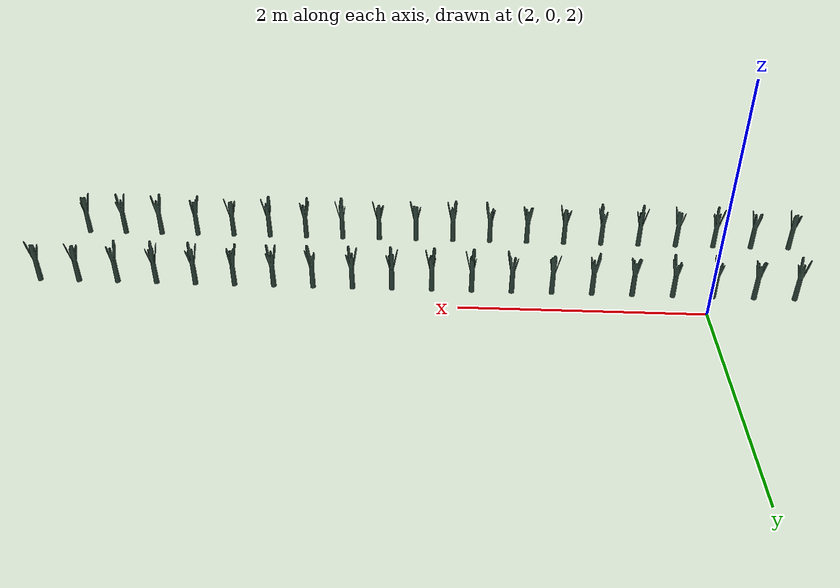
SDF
<sdf version="1.6">
 <world name="default">
  <light name="sun" type="directional">
   <pose>0 0 10 0 -0 0</pose>
   <diffuse>0.5 0.5 0.5 1</diffuse>
   <specular>0.1 0.1 0.1 1</specular>
   <attenuation>
    <range>1000</range>
    <constant>0.9</constant>
    <linear>0.01</linear>
    <quadratic>0.001</quadratic>
   </attenuation>
   <direction>0.9 0.5 -1</direction>
  </light>
  <scene><background>130 200 255 1</background><ambient>130 140 140 1</ambient></scene>
  <include>
   <uri>model://Leek</uri>
   <pose>1.500000 0.350000 2.550000 0 0 59.583787</pose>
   <static>1</static>
  </include>
  <include>
   <uri>model://Leek</uri>
   <pose>1.800000 0.350000 2.550000 0 0 31.789377</pose>
   <static>1</static>
  </include>
  <include>
   <uri>model://Leek</uri>
   <pose>2.100000 0.350000 2.550000 0 0 61.816491</pose>
   <static>1</static>
  </include>
  <include>
   <uri>model://Leek</uri>
   <pose>2.400000 0.350000 2.550000 0 0 42.863523</pose>
   <static>1</static>
  </include>
  <include>
   <uri>model://Leek</uri>
   <pose>2.700000 0.350000 2.550000 0 0 19.326920</pose>
   <static>1</static>
  </include>
  <include>
   <uri>model://Leek</uri>
   <pose>3.000000 0.350000 2.550000 0 0 21.064614</pose>
   <static>1</static>
  </include>
  <include>
   <uri>model://Leek</uri>
   <pose>3.300000 0.350000 2.550000 0 0 76.586776</pose>
   <static>1</static>
  </include>
  <include>
   <uri>model://Leek</uri>
   <pose>3.600000 0.350000 2.550000 0 0 -0.621783</pose>
   <static>1</static>
  </include>
  <include>
   <uri>model://Leek</uri>
   <pose>3.900000 0.350000 2.550000 0 0 86.150899</pose>
   <static>1</static>
  </include>
  <include>
   <uri>model://Leek</uri>
   <pose>4.200000 0.350000 2.550000 0 0 4.306550</pose>
   <static>1</static>
  </include>
  <include>
   <uri>model://Leek</uri>
   <pose>4.500000 0.350000 2.550000 0 0 -97.274583</pose>
   <static>1</static>
  </include>
  <include>
   <uri>model://Leek</uri>
   <pose>4.800000 0.350000 2.550000 0 0 -140.951969</pose>
   <static>1</static>
  </include>
  <include>
   <uri>model://Leek</uri>
   <pose>5.100000 0.350000 2.550000 0 0 -51.087761</pose>
   <static>1</static>
  </include>
  <include>
   <uri>model://Leek</uri>
   <pose>5.400000 0.350000 2.550000 0 0 98.107033</pose>
   <static>1</static>
  </include>
  <include>
   <uri>model://Leek</uri>
   <pose>5.700000 0.350000 2.550000 0 0 -22.712562</pose>
   <static>1</static>
  </include>
  <include>
   <uri>model://Leek</uri>
   <pose>6.000000 0.350000 2.550000 0 0 104.143838</pose>
   <static>1</static>
  </include>
  <include>
   <uri>model://Leek</uri>
   <pose>6.300000 0.350000 2.550000 0 0 59.901354</pose>
   <static>1</static>
  </include>
  <include>
   <uri>model://Leek</uri>
   <pose>6.600000 0.350000 2.550000 0 0 46.780711</pose>
   <static>1</static>
  </include>
  <include>
   <uri>model://Leek</uri>
   <pose>6.900000 0.350000 2.550000 0 0 -87.440433</pose>
   <static>1</static>
  </include>
  <include>
   <uri>model://Leek</uri>
   <pose>7.200000 0.350000 2.550000 0 0 -119.111201</pose>
   <static>1</static>
  </include>
  <include>
   <uri>model://Leek</uri>
   <pose>1.355000 -0.350000 2.550000 0 0 -151.053563</pose>
   <static>1</static>
  </include>
  <include>
   <uri>model://Leek</uri>
   <pose>1.655000 -0.350000 2.550000 0 0 -43.877264</pose>
   <static>1</static>
  </include>
  <include>
   <uri>model://Leek</uri>
   <pose>1.955000 -0.350000 2.550000 0 0 78.418479</pose>
   <static>1</static>
  </include>
  <include>
   <uri>model://Leek</uri>
   <pose>2.255000 -0.350000 2.550000 0 0 143.924478</pose>
   <static>1</static>
  </include>
  <include>
   <uri>model://Leek</uri>
   <pose>2.555000 -0.350000 2.550000 0 0 166.119062</pose>
   <static>1</static>
  </include>
  <include>
   <uri>model://Leek</uri>
   <pose>2.855000 -0.350000 2.550000 0 0 168.399534</pose>
   <static>1</static>
  </include>
  <include>
   <uri>model://Leek</uri>
   <pose>3.155000 -0.350000 2.550000 0 0 18.567902</pose>
   <static>1</static>
  </include>
  <include>
   <uri>model://Leek</uri>
   <pose>3.455000 -0.350000 2.550000 0 0 -137.671230</pose>
   <static>1</static>
  </include>
  <include>
   <uri>model://Leek</uri>
   <pose>3.755000 -0.350000 2.550000 0 0 24.360267</pose>
   <static>1</static>
  </include>
  <include>
   <uri>model://Leek</uri>
   <pose>4.055000 -0.350000 2.550000 0 0 -90.022461</pose>
   <static>1</static>
  </include>
  <include>
   <uri>model://Leek</uri>
   <pose>4.355000 -0.350000 2.550000 0 0 31.147766</pose>
   <static>1</static>
  </include>
  <include>
   <uri>model://Leek</uri>
   <pose>4.655000 -0.350000 2.550000 0 0 -43.872981</pose>
   <static>1</static>
  </include>
  <include>
   <uri>model://Leek</uri>
   <pose>4.955000 -0.350000 2.550000 0 0 11.072342</pose>
   <static>1</static>
  </include>
  <include>
   <uri>model://Leek</uri>
   <pose>5.255000 -0.350000 2.550000 0 0 -179.524600</pose>
   <static>1</static>
  </include>
  <include>
   <uri>model://Leek</uri>
   <pose>5.555000 -0.350000 2.550000 0 0 35.982831</pose>
   <static>1</static>
  </include>
  <include>
   <uri>model://Leek</uri>
   <pose>5.855000 -0.350000 2.550000 0 0 -100.120271</pose>
   <static>1</static>
  </include>
  <include>
   <uri>model://Leek</uri>
   <pose>6.155000 -0.350000 2.550000 0 0 -66.664642</pose>
   <static>1</static>
  </include>
  <include>
   <uri>model://Leek</uri>
   <pose>6.455000 -0.350000 2.550000 0 0 16.893939</pose>
   <static>1</static>
  </include>
  <include>
   <uri>model://Leek</uri>
   <pose>6.755000 -0.350000 2.550000 0 0 -83.991790</pose>
   <static>1</static>
  </include>
  <include>
   <uri>model://Leek</uri>
   <pose>7.055000 -0.350000 2.550000 0 0 -123.432864</pose>
   <static>1</static>
  </include>
 </world>
</sdf>

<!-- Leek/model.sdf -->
<sdf version='1.6'>
  <model name='Leek'>
    <link name='link'>
      <pose frame=''>0 0 0 0 -0 0</pose>
      <inertial>
        <mass>1</mass>
        <inertia>
          <ixx>0.145833</ixx>
          <ixy>0</ixy>
          <ixz>0</ixz>
          <iyy>0.145833</iyy>
          <iyz>0</iyz>
          <izz>0.125</izz>
        </inertia>
        <pose frame=''>0 0 0 0 -0 0</pose>
      </inertial>
      <self_collide>0</self_collide>
      <kinematic>0</kinematic>
      <gravity>1</gravity>
      <visual name='visual'>
        <geometry>
          <mesh>
            <uri>model://Leek/Poireau.dae</uri>
            <scale>1 1 1</scale>
          </mesh>
        </geometry>
        <material>
          <script>
            <name>Gazebo/Grey</name>
            <uri>file://media/materials/scripts/gazebo.material</uri>
          </script>
          <ambient>0.3 0.6 0.5 0</ambient>
          <diffuse>0.2 0.3 0.25 0</diffuse>
          <specular>0 0 0 1</specular>
          <emissive>0 0 0 1</emissive>
          <shader type='vertex'>
            <normal_map>__default__</normal_map>
          </shader>
        </material>
        <pose frame=''>0 0 -0.08 0 -0 0</pose>
        <cast_shadows>1</cast_shadows>
        <transparency>0</transparency>
      </visual>
      <collision name='collision'>
        <laser_retro>0</laser_retro>
        <max_contacts>10</max_contacts>
        <pose frame=''>0 0 0 0 -0 0</pose>
        <geometry>
          <cylinder>
            <radius>0.02</radius>
            <length>0.25</length>
          </cylinder>
        </geometry>
        <surface>
          <friction>
            <ode>
              <mu>1</mu>
              <mu2>1</mu2>
              <fdir1>0 0 0</fdir1>
              <slip1>0</slip1>
              <slip2>0</slip2>
            </ode>
            <torsional>
              <coefficient>1</coefficient>
              <patch_radius>0</patch_radius>
              <surface_radius>0</surface_radius>
              <use_patch_radius>1</use_patch_radius>
              <ode>
                <slip>0</slip>
              </ode>
            </torsional>
          </friction>
          <bounce>
            <restitution_coefficient>0</restitution_coefficient>
            <threshold>1e+06</threshold>
          </bounce>
          <contact>
            <collide_without_contact>0</collide_without_contact>
            <collide_without_contact_bitmask>1</collide_without_contact_bitmask>
            <collide_bitmask>1</collide_bitmask>
            <ode>
              <soft_cfm>0</soft_cfm>
              <soft_erp>0.2</soft_erp>
              <kp>1e+13</kp>
              <kd>1</kd>
              <max_vel>0.01</max_vel>
              <min_depth>0</min_depth>
            </ode>
            <bullet>
              <split_impulse>1</split_impulse>
              <split_impulse_penetration_threshold>-0.01</split_impulse_penetration_threshold>
              <soft_cfm>0</soft_cfm>
              <soft_erp>0.2</soft_erp>
              <kp>1e+13</kp>
              <kd>1</kd>
            </bullet>
          </contact>
        </surface>
      </collision>
    </link>
    <static>0</static>
    <allow_auto_disable>1</allow_auto_disable>
  </model>
</sdf>
